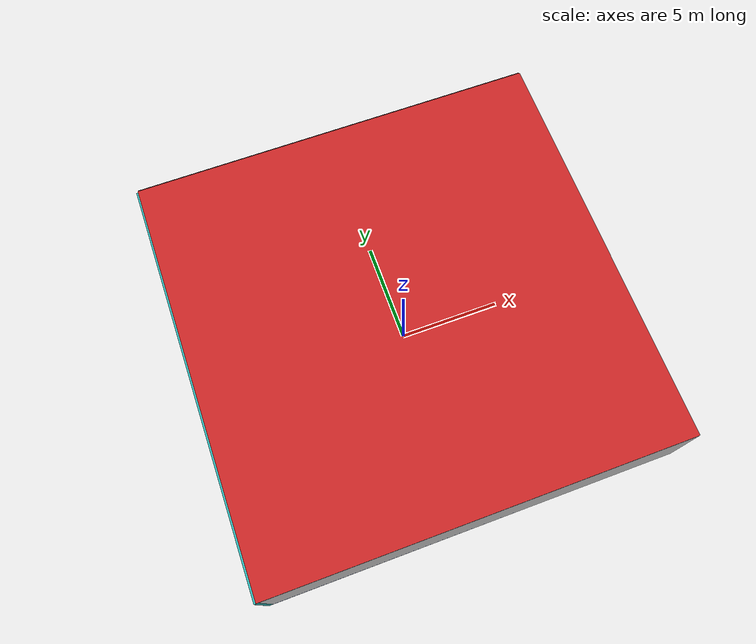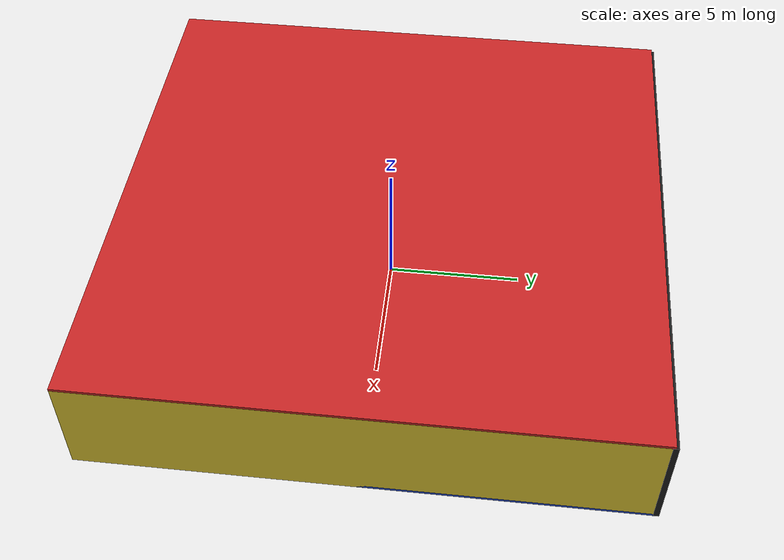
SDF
<sdf version="1.4">
 <world name="default">
  <physics type="ode">
   <max_step_size>0.001</max_step_size>
   <real_time_factor>1</real_time_factor>
   <real_time_update_rate>1000</real_time_update_rate>
   <gravity>0 0 -9.8</gravity>
  </physics>
  <scene><ambient>0.4 0.4 0.4 1</ambient><background>0.7 0.7 0.7 1</background><shadows>1</shadows></scene>
  <model name="Surrounding">
   <static>1</static>
   <link name="Ceiling">
    <collision name="Ceiling_Collision"><geometry><box><size>20 20 0.1</size></box></geometry></collision>
    <visual name="Ceiling_Visual">
     <geometry><box><size>20 20 0.1</size></box></geometry>
     <material>
      <script><uri>file://media/materials/scripts/gazebo.material</uri><name>Gazebo/RedBright</name></script>
     </material>
    </visual>
    <pose>0 0 4.05 0 0 0</pose>
   </link>
   <link name="Wall_South">
    <collision name="Wall_South_Collision">
     <geometry><box><size>20 0 4</size></box></geometry>
     <pose>0 0 2 0 -0 0</pose>
    </collision>
    <visual name="Wall_South_Visual">
     <pose>0 0 2 0 -0 0</pose>
     <geometry><box><size>20 0 4</size></box></geometry>
     <material>
      <script><uri>file://media/materials/scripts/gazebo.material</uri><name>Gazebo/WhiteGlow</name></script>
     </material>
    </visual>
    <velocity_decay><linear>0</linear><angular>0</angular></velocity_decay>
    <pose>0 -10 0 0 -0 0</pose>
   </link>
   <link name="Wall_East">
    <collision name="Wall_21_Collision">
     <geometry><box><size>20 0 4</size></box></geometry>
     <pose>0 0 2 0 -0 0</pose>
    </collision>
    <visual name="Wall_21_Visual">
     <pose>0 0 2 0 -0 0</pose>
     <geometry><box><size>20 0 4</size></box></geometry>
     <material>
      <script><uri>file://media/materials/scripts/gazebo.material</uri><name>Gazebo/ZincYellow</name></script>
     </material>
    </visual>
    <velocity_decay><linear>0</linear><angular>0</angular></velocity_decay>
    <pose>10 0 0 0 -0 1.5708</pose>
   </link>
   <link name="Wall_North">
    <collision name="Wall_22_Collision">
     <geometry><box><size>20 0.2 4</size></box></geometry>
     <pose>0 0 2 0 -0 0</pose>
    </collision>
    <visual name="Wall_22_Visual">
     <pose>0 0 2 0 -0 0</pose>
     <geometry><box><size>20 0.2 4</size></box></geometry>
     <material>
      <script><uri>file://media/materials/scripts/gazebo.material</uri><name>Gazebo/FlatBlack</name></script>
     </material>
    </visual>
    <velocity_decay><linear>0</linear><angular>0</angular></velocity_decay>
    <pose>0 10 0 0 -0 0</pose>
   </link>
   <link name="Wall_West">
    <collision name="Wall_23_Collision">
     <geometry><box><size>20 0.2 4</size></box></geometry>
     <pose>0 0 2 0 -0 0</pose>
    </collision>
    <visual name="Wall_23_Visual">
     <pose>0 0 2 0 -0 0</pose>
     <geometry><box><size>20 0.2 4</size></box></geometry>
     <material>
      <script>
       <uri>file://media/materials/scripts/gazebo.material</uri>
       <name>Gazebo/TurquoiseGlowOutline</name>
      </script>
     </material>
    </visual>
    <velocity_decay><linear>0</linear><angular>0</angular></velocity_decay>
    <pose>-10 0 0 0 0 -1.5708</pose>
   </link>
   <link name="Ground_link">
    <collision name="collision">
     <pose>0 0 .05 0 -0 0</pose>
     <geometry><box><size>20 20 0.1</size></box></geometry>
    </collision>
    <visual name="visual">
     <pose>0 0 .05 0 -0 0</pose>
     <geometry><box><size>20 20 0.1</size></box></geometry>
     <material>
      <script><uri>file://media/materials/scripts/gazebo.material</uri><name>Gazebo/BlueGlow</name></script>
     </material>
    </visual>
   </link>
   <static>1</static>
  </model>
  <spherical_coordinates>
   <surface_model>EARTH_WGS84</surface_model>
   <latitude_deg>0</latitude_deg>
   <longitude_deg>0</longitude_deg>
   <elevation>0</elevation>
   <heading_deg>0</heading_deg>
  </spherical_coordinates>
  <light name="lightball_0" type="diffuse">
   <diffuse>0.8 0.8 0.8 1</diffuse>
   <specular>0.2 0.2 0.2 1</specular>
   <attenuation>
    <range>100</range>
    <constant>0.7</constant>
    <linear>0.01</linear>
    <quadratic>0.001</quadratic>
   </attenuation>
   <direction>-0.5 0.1 -0.9</direction>
   <pose>-8.04328069708 -3.64689794272 1.04441358524 0 0 0</pose>
  </light>
  <light name="lightball_1" type="diffuse">
   <diffuse>0.8 0.8 0.8 1</diffuse>
   <specular>0.2 0.2 0.2 1</specular>
   <attenuation>
    <range>100</range>
    <constant>0.7</constant>
    <linear>0.01</linear>
    <quadratic>0.001</quadratic>
   </attenuation>
   <direction>-0.5 0.1 -0.9</direction>
   <pose>-0.419605923667 -3.11954279017 1.42045761412 0 0 0</pose>
  </light>
  <light name="lightball_2" type="diffuse">
   <diffuse>0.8 0.8 0.8 1</diffuse>
   <specular>0.2 0.2 0.2 1</specular>
   <attenuation>
    <range>100</range>
    <constant>0.7</constant>
    <linear>0.01</linear>
    <quadratic>0.001</quadratic>
   </attenuation>
   <direction>-0.5 0.1 -0.9</direction>
   <pose>9.92648979368 -3.36808201772 0.982773910342 0 0 0</pose>
  </light>
  <light name="lightball_3" type="diffuse">
   <diffuse>0.8 0.8 0.8 1</diffuse>
   <specular>0.2 0.2 0.2 1</specular>
   <attenuation>
    <range>100</range>
    <constant>0.7</constant>
    <linear>0.01</linear>
    <quadratic>0.001</quadratic>
   </attenuation>
   <direction>-0.5 0.1 -0.9</direction>
   <pose>0.43598208209 -4.2820588221 3.63861082577 0 0 0</pose>
  </light>
  <light name="lightball_4" type="diffuse">
   <diffuse>0.8 0.8 0.8 1</diffuse>
   <specular>0.2 0.2 0.2 1</specular>
   <attenuation>
    <range>100</range>
    <constant>0.7</constant>
    <linear>0.01</linear>
    <quadratic>0.001</quadratic>
   </attenuation>
   <direction>-0.5 0.1 -0.9</direction>
   <pose>1.68667038488 4.00740795879 3.43742575819 0 0 0</pose>
  </light>
  <light name="lightball_5" type="diffuse">
   <diffuse>0.8 0.8 0.8 1</diffuse>
   <specular>0.2 0.2 0.2 1</specular>
   <attenuation>
    <range>100</range>
    <constant>0.7</constant>
    <linear>0.01</linear>
    <quadratic>0.001</quadratic>
   </attenuation>
   <direction>-0.5 0.1 -0.9</direction>
   <pose>5.72793147068 1.14182823032 1.01075842374 0 0 0</pose>
  </light>
  <light name="lightball_6" type="diffuse">
   <diffuse>0.8 0.8 0.8 1</diffuse>
   <specular>0.2 0.2 0.2 1</specular>
   <attenuation>
    <range>100</range>
    <constant>0.7</constant>
    <linear>0.01</linear>
    <quadratic>0.001</quadratic>
   </attenuation>
   <direction>-0.5 0.1 -0.9</direction>
   <pose>6.73823414263 -6.83141788954 2.96476031759 0 0 0</pose>
  </light>
  <include>
   <uri>model://robocup_3Dsim_goal</uri>
   <pose>-5.18260998555 -3.49969244884 0 0 0 1.25107706428</pose>
  </include>
  <include>
   <uri>model://robocup_3Dsim_goal</uri>
   <pose>-5.66387353712 5.40945276716 0 0 0 2.50014980016</pose>
  </include>
  <include>
   <uri>model://construction_cone</uri>
   <pose>-1.46821293985 -3.83214890143 0 0 0 2.31019109455</pose>
  </include>
  <include><uri>model://table</uri><pose>-0.909879457635 5.32299649412 0 0 0 2.77857040013</pose></include>
  <include>
   <uri>model://robocup_3Dsim_goal</uri>
   <pose>1.52239616797 6.622127815 0 0 0 1.67404647083</pose>
  </include>
 </world>
</sdf>

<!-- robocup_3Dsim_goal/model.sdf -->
<sdf version="1.5">
  <model name="robocup_3d_goal">
    <static>true</static>
    <link name="left_post">
      <pose>0 1.05 0.45 0 0 0</pose>
      <collision name="collision">
        <geometry>
          <cylinder>
            <radius>0.05</radius>
            <length>0.9</length>
          </cylinder>
        </geometry>
      </collision>
      <visual name="visual">
        <geometry>
          <cylinder>
            <radius>0.05</radius>
            <length>0.9</length>
          </cylinder>
        </geometry>
        <material>
          <script>
            <uri>file://media/materials/scripts/gazebo.material</uri>
            <name>Gazebo/ZincYellow</name>
          </script>
        </material>
      </visual>
    </link>
    <link name="left_support_horiz_lower">
      <pose>0.30 1.05 0.01 0 0 0</pose>
      <collision name="collision">
        <geometry>
          <box>
            <size>0.50 0.02 0.02</size>
          </box>
        </geometry>
      </collision>
      <visual name="visual">
        <geometry>
          <box>
            <size>0.50 0.02 0.02</size>
          </box>
        </geometry>
        <material>
          <script>
            <uri>file://media/materials/scripts/gazebo.material</uri>
            <name>Gazebo/White</name>
          </script>
        </material>
      </visual>
    </link>
    <link name="left_support_horiz_upper">
      <pose>0.30 1.05 0.79 0 0 0</pose>
      <collision name="collision">
        <geometry>
          <box>
            <size>0.50 0.02 0.02</size>
          </box>
        </geometry>
      </collision>
      <visual name="visual">
        <geometry>
          <box>
            <size>0.50 0.02 0.02</size>
          </box>
        </geometry>
        <material>
          <script>
            <uri>file://media/materials/scripts/gazebo.material</uri>
            <name>Gazebo/White</name>
          </script>
        </material>
      </visual>
    </link>
    <link name="left_support_vertical">
      <pose>0.56 1.05 0.4 0 1.5708 0</pose>
      <collision name="collision">
        <geometry>
          <box>
            <size>0.80 0.02 0.02</size>
          </box>
        </geometry>
      </collision>
      <visual name="visual">
        <geometry>
          <box>
            <size>0.80 0.02 0.02</size>
          </box>
        </geometry>
        <material>
          <script>
            <uri>file://media/materials/scripts/gazebo.material</uri>
            <name>Gazebo/White</name>
          </script>
        </material>
      </visual>
    </link>
    <link name="right_support_horiz_lower">
      <pose>0.30 -1.05 0.01 0 0 0</pose>
      <collision name="collision">
        <geometry>
          <box>
            <size>0.50 0.02 0.02</size>
          </box>
        </geometry>
      </collision>
      <visual name="visual">
        <geometry>
          <box>
            <size>0.50 0.02 0.02</size>
          </box>
        </geometry>
        <material>
          <script>
            <uri>file://media/materials/scripts/gazebo.material</uri>
            <name>Gazebo/White</name>
          </script>
        </material>
      </visual>
    </link>
    <link name="right_support_horiz_upper">
      <pose>0.30 -1.05 0.79 0 0 0</pose>
      <collision name="collision">
        <geometry>
          <box>
            <size>0.50 0.02 0.02</size>
          </box>
        </geometry>
      </collision>
      <visual name="visual">
        <geometry>
          <box>
            <size>0.50 0.02 0.02</size>
          </box>
        </geometry>
        <material>
          <script>
            <uri>file://media/materials/scripts/gazebo.material</uri>
            <name>Gazebo/White</name>
          </script>
        </material>
      </visual>
    </link>
    <link name="right_support_vertical">
      <pose>0.56 -1.05 0.4 0 1.5708 0</pose>
      <collision name="collision">
        <geometry>
          <box>
            <size>0.80 0.02 0.02</size>
          </box>
        </geometry>
      </collision>
      <visual name="visual">
        <geometry>
          <box>
            <size>0.80 0.02 0.02</size>
          </box>
        </geometry>
        <material>
          <script>
            <uri>file://media/materials/scripts/gazebo.material</uri>
            <name>Gazebo/White</name>
          </script>
        </material>
      </visual>
    </link>
    <link name="center_support_horiz_lower">
      <pose>0.56 0 0.01 0 1.5708 0</pose>
      <collision name="collision">
        <geometry>
          <box>
            <size>0.02 2.08 0.02</size>
          </box>
        </geometry>
      </collision>
      <visual name="visual">
        <geometry>
          <box>
            <size>0.02 2.08 0.02</size>
          </box>
        </geometry>
        <material>
          <script>
            <uri>file://media/materials/scripts/gazebo.material</uri>
            <name>Gazebo/White</name>
          </script>
        </material>
      </visual>
    </link>
    <link name="center_support_horiz_upper">
      <pose>0.56 0 0.79 0 1.5708 0</pose>
      <collision name="collision">
        <geometry>
          <box>
            <size>0.02 2.08 0.02</size>
          </box>
        </geometry>
      </collision>
      <visual name="visual">
        <geometry>
          <box>
            <size>0.02 2.08 0.02</size>
          </box>
        </geometry>
        <material>
          <script>
            <uri>file://media/materials/scripts/gazebo.material</uri>
            <name>Gazebo/White</name>
          </script>
        </material>
      </visual>
    </link>
    <link name="right_post">
      <pose>0 -1.05 0.45 0 0 0</pose>
      <collision name="collision">
        <geometry>
          <cylinder>
            <radius>0.05</radius>
            <length>0.9</length>
          </cylinder>
        </geometry>
      </collision>
      <visual name="visual">
        <geometry>
          <cylinder>
            <radius>0.05</radius>
            <length>0.9</length>
          </cylinder>
        </geometry>
        <material>
          <script>
            <uri>file://media/materials/scripts/gazebo.material</uri>
            <name>Gazebo/ZincYellow</name>
          </script>
        </material>
      </visual>
    </link>
    <link name="crossbar">
      <pose>0 0 0.85 1.57 1.57 0</pose>
      <collision name="collision">
        <geometry>
          <cylinder>
            <radius>0.05</radius>
            <length>2.0</length>
          </cylinder>
        </geometry>
      </collision>
      <visual name="visual">
        <geometry>
          <cylinder>
            <radius>0.05</radius>
            <length>2.0</length>
          </cylinder>
        </geometry>
        <material>
          <script>
            <uri>file://media/materials/scripts/gazebo.material</uri>
            <name>Gazebo/ZincYellow</name>
          </script>
        </material>
      </visual>
    </link>
    <link name="center_net">
      <pose>0.56 0 0.40 0 0 0</pose>
      <collision name="collision">
        <geometry>
          <box>
            <size>0.01 2.1 0.80</size>
          </box>
        </geometry>
      </collision>
      <visual name="visual">
        <geometry>
          <box>
            <size>0.01 2.1 0.80</size>
          </box>
        </geometry>
        <material>
          <script>
            <uri>model://../model_source/models/robocup09_spl_field/materials/scripts/</uri>
            <uri>model://../model_source/models/robocup09_spl_field/materials/textures/</uri>
            <name>RoboCup/Net</name>
          </script>
        </material>
      </visual>
    </link>
    <link name="left_net">
      <pose>0.30 1.05 0.40 0 0 0</pose>
      <collision name="collision">
        <geometry>
          <box>
            <size>0.50 0.01 0.76</size>
          </box>
        </geometry>
      </collision>
      <visual name="visual">
        <geometry>
          <box>
            <size>0.50 0.01 0.76</size>
          </box>
        </geometry>
        <material>
          <script>
            <uri>model://../model_source/models/robocup09_spl_field/materials/scripts/</uri>
            <uri>model://../model_source/models/robocup09_spl_field/materials/textures/</uri>
            <name>RoboCup/Net</name>
          </script>
        </material>
      </visual>
    </link>
    <link name="right_net">
      <pose>0.30 -1.05 0.40 0 0 0</pose>
      <collision name="collision">
        <geometry>
          <box>
            <size>0.50 0.01 0.76</size>
          </box>
        </geometry>
      </collision>
      <visual name="visual">
        <geometry>
          <box>
            <size>0.50 0.01 0.76</size>
          </box>
        </geometry>
        <material>
          <script>
            <uri>model://../model_source/models/robocup09_spl_field/materials/scripts/</uri>
            <uri>model://../model_source/models/robocup09_spl_field/materials/textures/</uri>
            <name>RoboCup/Net</name>
          </script>
        </material>
      </visual>
    </link>
  </model>
</sdf>

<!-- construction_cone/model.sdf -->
<sdf version="1.5">
  <model name="Construction Cone">
    <link name="link">
      <collision name="collision">
        <geometry>
          <mesh>
            <scale>10 10 10</scale>
            <uri>file://isr-testbed/construction_cone/meshes/construction_cone.dae</uri>
          </mesh>
        </geometry>
      </collision>
      <visual name="visual">
        <geometry>
          <mesh>
            <scale>10 10 10</scale>
            <uri>file://isr-testbed/construction_cone/meshes/construction_cone.dae</uri>
          </mesh>
        </geometry>
      </visual>
    </link>
  </model>
</sdf>

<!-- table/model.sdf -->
<sdf version="1.5">
  <model name="table">
    <static>true</static>
    <link name="link">
      <collision name="surface">
        <pose>0 0 1.0 0 0 0</pose>
        <geometry>
          <box>
            <size>1.5 0.8 0.03</size>
          </box>
        </geometry>
        <surface>
          <friction>
            <ode>
              <mu>0.6</mu>
              <mu2>0.6</mu2>
            </ode>
          </friction>
        </surface>
      </collision>
      <visual name="visual1">
        <pose>0 0 1.0 0 0 0</pose>
        <geometry>
          <box>
            <size>1.5 0.8 0.03</size>
          </box>
        </geometry>
        <material>
          <script>
            <uri>model://media/materials/scripts/gazebo.material</uri>
            <name>Gazebo/Wood</name>
          </script>
        </material>
      </visual>
      <collision name="front_left_leg">
        <pose>0.68 0.38 0.5 0 0 0</pose>
        <geometry>
          <cylinder>
            <radius>0.02</radius>
            <length>1.0</length>
          </cylinder>
        </geometry>
      </collision>
      <visual name="front_left_leg">
        <pose>0.68 0.38 0.5 0 0 0</pose>
        <geometry>
          <cylinder>
            <radius>0.02</radius>
            <length>1.0</length>
          </cylinder>
        </geometry>
        <material>
          <script>
            <uri>model://media/materials/scripts/gazebo.material</uri>
            <name>Gazebo/Grey</name>
          </script>
        </material>
      </visual>
      <collision name="front_right_leg">
        <pose>0.68 -0.38 0.5 0 0 0</pose>
        <geometry>
          <cylinder>
            <radius>0.02</radius>
            <length>1.0</length>
          </cylinder>
        </geometry>
      </collision>
      <visual name="front_right_leg">
        <pose>0.68 -0.38 0.5 0 0 0</pose>
        <geometry>
          <cylinder>
            <radius>0.02</radius>
            <length>1.0</length>
          </cylinder>
        </geometry>
        <material>
          <script>
            <uri>model://media/materials/scripts/gazebo.material</uri>
            <name>Gazebo/Grey</name>
          </script>
        </material>
      </visual>
      <collision name="back_right_leg">
        <pose>-0.68 -0.38 0.5 0 0 0</pose>
        <geometry>
          <cylinder>
            <radius>0.02</radius>
            <length>1.0</length>
          </cylinder>
        </geometry>
      </collision>
      <visual name="back_right_leg">
        <pose>-0.68 -0.38 0.5 0 0 0</pose>
        <geometry>
          <cylinder>
            <radius>0.02</radius>
            <length>1.0</length>
          </cylinder>
        </geometry>
        <material>
          <script>
            <uri>model://media/materials/scripts/gazebo.material</uri>
            <name>Gazebo/Grey</name>
          </script>
        </material>
      </visual>
      <collision name="back_left_leg">
        <pose>-0.68 0.38 0.5 0 0 0</pose>
        <geometry>
          <cylinder>
            <radius>0.02</radius>
            <length>1.0</length>
          </cylinder>
        </geometry>
      </collision>
      <visual name="back_left_leg">
        <pose>-0.68 0.38 0.5 0 0 0</pose>
        <geometry>
          <cylinder>
            <radius>0.02</radius>
            <length>1.0</length>
          </cylinder>
        </geometry>
        <material>
          <script>
            <uri>model://media/materials/scripts/gazebo.material</uri>
            <name>Gazebo/Grey</name>
          </script>
        </material>
      </visual>
    </link>
  </model>
</sdf>
